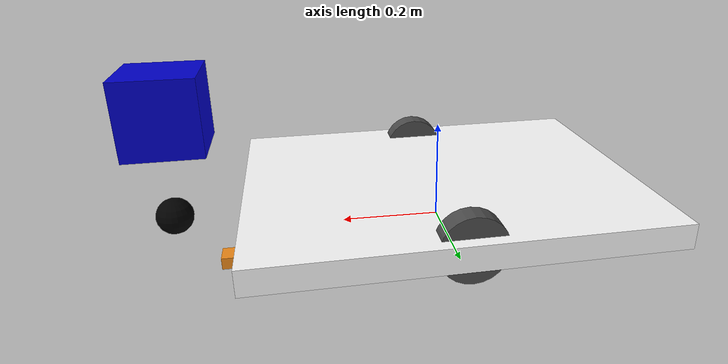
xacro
<?xml version="1.0"?>
<robot name="differential_wheeled_robot" xmlns:xacro="http://www.ros.org/wiki/xacro">

  <xacro:include filename="$(find derobotee)/urdf/wheel.urdf.xacro" />

<!-- Defining the colors used in this robot -->
  <material name="Black">
    <color rgba="0.0 0.0 0.0 1.0"/>
  </material>

  <material name="Red">
    <color rgba="0.8 0.0 0.0 1.0"/>
  </material>

  <material name="White">
    <color rgba="1.0 1.0 1.0 1.0"/>
  </material>

  <material name="Blue">
    <color rgba="0.0 0.0 0.8 1.0"/>
  </material>

  <!-- PROPERTY LIST -->
  <!--All units in m-kg-s-radians unit system -->
  <property name="M_PI" value="3.1415926535897931" />
  <property name="M_PI_2" value="1.570796327" />
  <property name="DEG_TO_RAD" value="0.017453293" />

  <!-- Main body radius and height -->
  <!-- Main Body Cylinder base   -->
  <property name="base_height" value="0.15" />
  <property name="base_radius" value="0.3" />
  <property name="base_mass" value="5" /> <!-- in kg-->

  <!-- caster wheel radius and height -->
  <!-- caster wheel mass -->
  <property name="caster_f_height" value="0.069" />
  <property name="caster_f_radius" value="0.037" />
  <property name="caster_f_mass" value="0.5" /> <!-- in kg-->

  <property name="wheel_mass" value="2.5" /> --> <!-- in kg-->

  <!-- Hokuyo Laser scanner -->
  <property name="sick_size" value="0.15" />

  <!-- Macro for calculating inertia of cylinder -->
  <macro name="cylinder_inertia" params="m r h">
    <inertia  ixx="${m*(3*r*r+h*h)/12}" ixy = "0" ixz = "0"
              iyy="${m*(3*r*r+h*h)/12}" iyz = "0"
              izz="${m*r*r/2}" />
  </macro>

  <!-- BASE-FOOTPRINT -->
  <!-- base_footprint is a fictitious link(frame) that is on the ground right below base_link origin -->
  <link name="base_footprint">
    <inertial>
      <mass value="0.0001" />
      <origin xyz="0 0 0" />
      <inertia ixx="0.0001" ixy="0.0" ixz="0.0"
          iyy="0.0001" iyz="0.0"
          izz="0.0001" />
    </inertial>
    <visual>
        <origin xyz="0 0 0" rpy="0 0 0" />
        <geometry>
            <box size="0.001 0.001 0.001" />
        </geometry>
    </visual>
  </link>

  <gazebo reference="base_footprint">
    <turnGravityOff>false</turnGravityOff>
  </gazebo>

  <joint name="base_footprint_joint" type="fixed">
    <origin xyz="0 0 ${wheel_radius - base_z_origin_to_wheel_origin}" rpy="0 0.01 0" />
    <parent link="base_footprint"/>
    <child link="base_link" />
  </joint>

  <!-- BASE-LINK -->
  <!--Actual body/chassis of the robot-->
  <link name="base_link">
    <inertial>
      <mass value="${base_mass}" />
      <origin xyz="0 0 0" />
      <!--The 3x3 rotational inertia matrix. -->
        <cylinder_inertia  m="${base_mass}" r="${base_radius}" h="${base_height}" />

    </inertial>
    <visual>
      <origin xyz="0 0 0" rpy="0 0 0" />
      <geometry>

          <!--cylinder length="${base_height}" radius="${base_radius}" /-->
          <box size="0.8 0.62 0.05" />

      </geometry>
      <material name="White" />
    </visual>
    <collision>
      <origin xyz="0 0 0" rpy="0 0 0 " />
      <geometry>

          <cylinder length="${base_height}" radius="${base_radius}" />

      </geometry>
    </collision>
  </link>
  <gazebo reference="base_link">
    <material>Gazebo/White</material>
    <turnGravityOff>false</turnGravityOff>
  </gazebo>

<!--Caster front  -->

    <link name="caster_front_link">

    <visual>
      <origin xyz="0 0.02 0" rpy="${M_PI/2} 0 0" />
      <geometry>
	<sphere radius="${caster_f_radius}" />
      </geometry>
      <material name="Black" />
    </visual>

      <collision>
        <geometry>

	<sphere radius="${caster_f_radius}" />

        </geometry>
      <origin xyz="0 0.02 0" rpy="${M_PI/2} 0 0" />
      </collision>
      <inertial>
        <mass value="${caster_f_mass}" />
        <origin xyz="0 0 0" />
        <inertia ixx="0.001" ixy="0.0" ixz="0.0"
                 iyy="0.001" iyz="0.0"
                 izz="0.001" />
      </inertial>
    </link>

 <joint name="caster_front_joint" type="fixed">
      <parent link="base_link"/>
      <child link="caster_front_link"/>
      <origin xyz="0.538 0.0 0" rpy="${-M_PI/2} 0 0"/>
    </joint>

  <gazebo reference="caster_front_link">
    <turnGravityOff>false</turnGravityOff>
  </gazebo>

<!-- Wheel Definitions -->

  <wheel fb="back" lr="right" parent="base_link" translateX="-1" translateY="1" flipY="1"/>
  <wheel fb="back" lr="left" parent="base_link" translateX="-1" translateY="-1" flipY="1"/>

  <!-- SENSORS -->

  <!-- hokuyo -->
  <link name="imu_link">
   <visual>
     <origin xyz="0 0 0"/>
     <geometry>
       <box size="0.035 0.035 0.02" />
     </geometry>
     <material name="orange" />
   </visual>
  </link>

  <joint name="imu_link_joint" type="fixed">
i   <parent link="base_link" />
    <child link="imu_link" />
    <origin xyz="0.404 0.2395 0.008" rpy="0  0  0"/>
  </joint>
  <link name="laser">
    <visual>
      <origin xyz="0 0 0" rpy="0 0 0" />
      <geometry>
        <box size="${sick_size} ${sick_size} ${sick_size}"/>
      </geometry>
      <material name="Blue" />
    </visual>
  </link>
  <joint name="sick_joint" type="fixed">
    <origin xyz="0.52638 0 0.20" rpy="0 0 0" />
    <parent link="base_link"/>
    <child link="laser" />
  </joint>
  <gazebo reference="laser">
    <material>Gazebo/Blue</material>
    <turnGravityOff>false</turnGravityOff>
    <sensor type="ray" name="head_hokuyo_sensor">
      <pose>${sick_size/2} 0 0 0 0 0</pose>
      <visualize>false</visualize>
      <update_rate>40</update_rate>
      <ray>
        <scan>
          <horizontal>
            <samples>720</samples>
            <resolution>1</resolution>
            <min_angle>-1.570796</min_angle>
            <max_angle>1.570796</max_angle>
          </horizontal>
        </scan>
        <range>
          <min>0.10</min>
          <max>10.0</max>
          <resolution>0.001</resolution>
        </range>
      </ray>
      <plugin name="gazebo_ros_head_hokuyo_controller" filename="libgazebo_ros_laser.so">
        <topicName>/scan</topicName>
        <frameName>laser</frameName>
      </plugin>
    </sensor>
  </gazebo>

  <!-- Differential drive controller  -->
  <gazebo>
    <plugin name="differential_drive_controller" filename="libgazebo_ros_diff_drive.so">

      <rosDebugLevel>Debug</rosDebugLevel>
      <publishWheelTF>false</publishWheelTF>
      <robotNamespace>/</robotNamespace>
      <publishTf>1</publishTf>
      <publishWheelJointState>false</publishWheelJointState>
      <alwaysOn>true</alwaysOn>
      <updateRate>100.0</updateRate>
      <leftJoint>back_left_wheel_joint</leftJoint>
      <rightJoint>back_right_wheel_joint</rightJoint>
      <wheelSeparation>${2*base_radius}</wheelSeparation>
      <wheelDiameter>${2*wheel_radius}</wheelDiameter>
      <broadcastTF>1</broadcastTF>
      <wheelTorque>30</wheelTorque>
      <wheelAcceleration>1.8</wheelAcceleration>
      <commandTopic>cmd_vel</commandTopic>
      <odometryFrame>odom</odometryFrame>
      <odometryTopic>odom</odometryTopic>
      <robotBaseFrame>base_footprint</robotBaseFrame>

    </plugin>
  </gazebo>

</robot>

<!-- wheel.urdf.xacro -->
<robot name="wheel" xmlns:xacro="http://www.ros.org/wiki/xacro">

  <!-- Wheels -->
  <property name="wheel_radius" value="0.065" />
  <property name="wheel_height" value="0.042" />
  <property name="wheel_mass" value="2.5" /> <!-- in kg-->

  <property name="base_x_origin_to_wheel_origin" value="0" />
  <property name="base_y_origin_to_wheel_origin" value="0.264" />
  <property name="base_z_origin_to_wheel_origin" value="0.0" />

  <macro name="cylinder_inertia" params="m r h">
    <inertia  ixx="${m*(3*r*r+h*h)/12}" ixy = "0" ixz = "0"
              iyy="${m*(3*r*r+h*h)/12}" iyz = "0"
              izz="${m*r*r/2}" />
  </macro>

  <xacro:macro name="wheel" params="fb lr parent translateX translateY flipY"> <!--fb : front, back ; lr: left, right -->
    <link name="${fb}_${lr}_wheel">
      <visual>
        <origin xyz="0 0 0" rpy="${flipY*M_PI/2} 0  0 " />
        <geometry>
          <cylinder length="${wheel_height}" radius="${wheel_radius}" />
        </geometry>
        <material name="DarkGray" />
      </visual>
      <collision>
        <origin xyz="0 0 0" rpy="${flipY*M_PI/2} 0 0 " />
        <geometry>
          <cylinder length="${wheel_height}" radius="${wheel_radius}" />
        </geometry>
      </collision>
      <inertial>
        <mass value="${wheel_mass}" />
        <origin xyz="0 0 0" />
        <cylinder_inertia  m="${wheel_mass}" r="${wheel_radius}" h="${wheel_height}" />
      </inertial>
    </link>

    <gazebo reference="${fb}_${lr}_wheel">
      <mu1 value="1.0"/>
      <mu2 value="1.0"/>
      <kp  value="10000000.0" />
      <kd  value="1.0" />
      <fdir1 value="1 0 0"/>
      <material>Gazebo/Grey</material>
      <turnGravityOff>false</turnGravityOff>
    </gazebo>

    <joint name="${fb}_${lr}_wheel_joint" type="continuous">
      <parent link="${parent}"/>
      <child link="${fb}_${lr}_wheel"/>
      <origin xyz="${translateX * base_x_origin_to_wheel_origin} ${translateY * base_y_origin_to_wheel_origin} ${base_z_origin_to_wheel_origin}" rpy="0 0 0" />
      <axis xyz="0 1 0" rpy="0 0 0" />
      <limit effort="100" velocity="100"/>
      <joint_properties damping="0.0" friction="0.0"/>
    </joint>

    <!-- Transmission is important to link the joints and the controller -->
    <transmission name="${fb}_${lr}_wheel_joint_trans">
      <type>transmission_interface/SimpleTransmission</type>
      <joint name="${fb}_${lr}_wheel_joint" />
      <actuator name="${fb}_${lr}_wheel_joint_motor">
        <hardwareInterface>EffortJointInterface</hardwareInterface>
        <mechanicalReduction>1</mechanicalReduction>
      </actuator>
    </transmission>

  </xacro:macro>
</robot>
